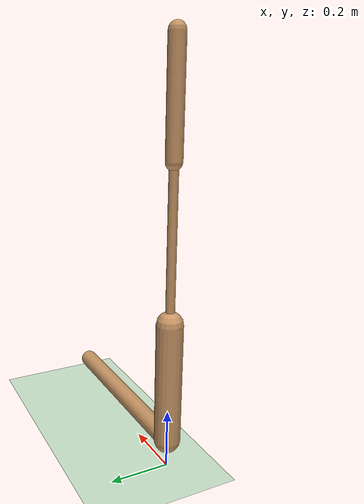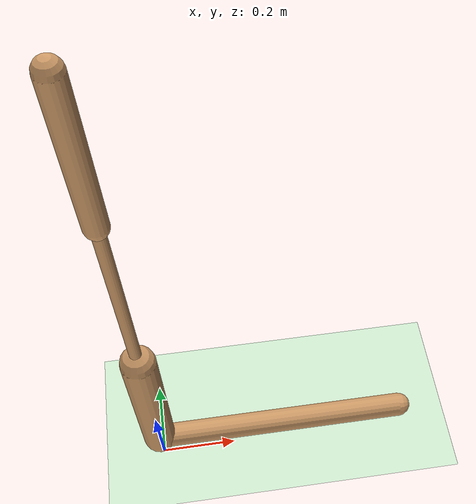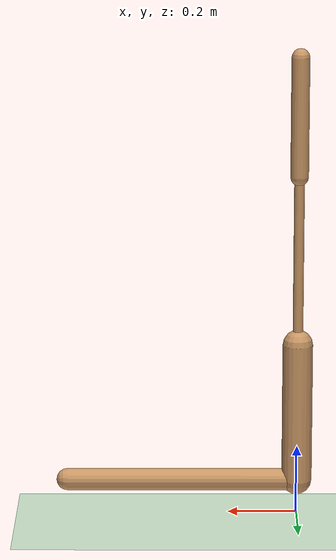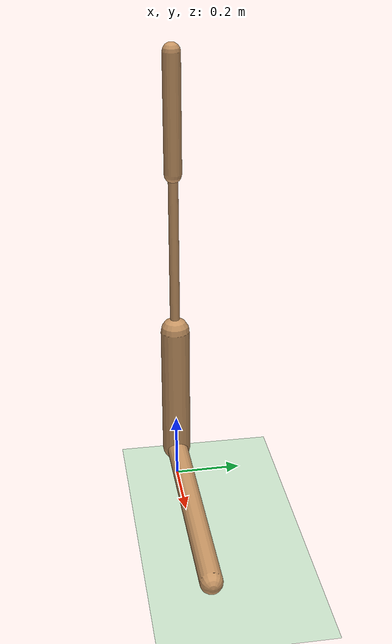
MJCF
<mujoco model="walker2d">
  <compiler angle="degree" inertiafromgeom="true" />
  <default>
    <joint armature="0.01" damping=".1" limited="true" />
    <geom conaffinity="0" condim="3" contype="1" density="1000" friction=".7 .1 .1" rgba="0.8 0.6 .4 1" />
  </default>
  <option integrator="RK4" timestep="0.002" />
  <worldbody>
    <light cutoff="100" diffuse="1 1 1" dir="-0 0 -1.3" directional="true" exponent="1" pos="0 0 1.3" specular=".1 .1 .1" />
    <geom conaffinity="1" condim="3" name="floor" pos="0 0 0" rgba="0.8 0.9 0.8 1" size="40 40 40" type="plane" material="MatPlane" />
    <body name="torso" pos="0 0 1.174143558740616">
      <camera name="track" mode="trackcom" pos="0 -5 -1.25" xyaxes="1 0 0 0 0 1" />
      <joint armature="0" axis="1 0 0" damping="0" limited="false" name="rootx" pos="0 0 -1.25" stiffness="0" type="slide" />
      <joint armature="0" axis="0 0 1" damping="0" limited="false" name="rootz" pos="0 0 -1.25" ref="1.25" stiffness="0" type="slide" />
      <joint armature="0" axis="0 1 0" damping="0" limited="false" name="rooty" pos="0 0 0" stiffness="0" type="hinge" />
      <geom friction="0.9" name="torso_geom" size="0.02589675411581993 0.1719171702861786" type="capsule" />
      <body name="thigh" pos="0 0 -0.1719171702861786">
        <joint axis="0 -1 0" name="thigh_joint" pos="0 0 0" range="-150 0" type="hinge" />
        <site name="torso_thigh_site" pos="0 0 0" size="0.01" type="sphere" rgba="1 0 0 0.5" />
        <geom friction="0.9" pos="0 0 -0.247030109167099" name="thigh_geom" size="0.01468297466635704 0.247030109167099" type="capsule" />
        <body name="leg" pos="0 0 -0.6981433033943176">
          <joint axis="0 -1 0" name="leg_joint" pos="0 0 0.20408308506011963" range="-150 0" type="hinge" />
          <site name="thigh_leg_site" pos="0 0 0.25" size="0.01" type="sphere" rgba="1 0 0 0.5" />
          <geom friction="0.9" name="leg_geom" size="0.04335831105709076 0.20408308506011963" type="capsule" />
          <body name="foot" pos="0.6668641567230225 0 -0.3040830850601196">
            <joint axis="0 -1 0" name="foot_joint" pos="-0.6668641567230225 0 0.1" range="-45 45" type="hinge" />
            <site name="leg_foot_site" pos="-0.2 0 0.1" size="0.01" type="sphere" rgba="1 0 0 0.5" />
            <geom friction="0.9" pos="-0.33343207836151123 0 0.1" quat="0.70710678118654757 0 -0.70710678118654746 0" name="foot_geom" size="0.0319717675447464 0.33343207836151123" type="capsule" />
          </body>
        </body>
      </body>

      <body name="thigh_left" pos="0 0 -0.1719171702861786">
        <joint axis="0 -1 0" name="thigh_left_joint" pos="0 0 0" range="-150 0" type="hinge" />
        <site name="torso_thigh_left_site" pos="0 0 0" size="0.01" type="sphere" rgba="1 0 0 0.5" />
        <geom friction="0.9" name="thigh_left_geom" rgba=".7 .3 .6 1" size="0.01468297466635704 0.247030109167099" pos="0 0 -0.247030109167099" type="capsule" />
        <body name="leg_left" pos="0 0 -0.6981433033943176">
          <joint axis="0 -1 0" name="leg_left_joint" pos="0 0 0.20408308506011963" range="-150 0" type="hinge" />
          <site name="thigh_leg_left_site" pos="0 0 0.25" size="0.01" type="sphere" rgba="1 0 0 0.5" />
          <geom friction="0.9" name="leg_left_geom" rgba=".7 .3 .6 1" size="0.04335831105709076 0.20408308506011963" type="capsule" />
          <body name="foot_left" pos="0.6668641567230225 0 -0.3040830850601196">
            <joint axis="0 -1 0" name="foot_left_joint" pos="-0.6668641567230225 0 0.1" range="-45 45" type="hinge" />
            <site name="leg_foot_left_site" pos="-0.2 0 0.1" size="0.01" type="sphere" rgba="1 0 0 0.5" />
            <geom friction="1.9" name="foot_left_geom" rgba=".7 .3 .6 1" size="0.0319717675447464 0.33343207836151123" pos="-0.33343207836151123 0 0.1" type="capsule" quat="0.70710678118654757 0 -0.70710678118654746 0" />
          </body>
        </body>
      </body>
    </body>
  </worldbody>
  <actuator>

    <motor ctrllimited="true" ctrlrange="-1.0 1.0" gear="9.467939245461444" joint="thigh_joint" />
    <motor ctrllimited="true" ctrlrange="-1.0 1.0" gear="95.91614882105019" joint="leg_joint" />
    <motor ctrllimited="true" ctrlrange="-1.0 1.0" gear="94.67562311459082" joint="foot_joint" />
    <motor ctrllimited="true" ctrlrange="-1.0 1.0" gear="9.467939245461444" joint="thigh_left_joint" />
    <motor ctrllimited="true" ctrlrange="-1.0 1.0" gear="95.91614882105019" joint="leg_left_joint" />
    <motor ctrllimited="true" ctrlrange="-1.0 1.0" gear="94.67562311459082" joint="foot_left_joint" />

  </actuator>
    <asset>
        <texture type="skybox" builtin="gradient" rgb1=".4 .5 .6" rgb2="0 0 0" width="100" height="100" />
        <texture builtin="flat" height="1278" mark="cross" markrgb="1 1 1" name="texgeom" random="0.01" rgb1="0.8 0.6 0.4" rgb2="0.8 0.6 0.4" type="cube" width="127" />
        <texture builtin="checker" height="100" name="texplane" rgb1="0 0 0" rgb2="0.8 0.8 0.8" type="2d" width="100" />
        <material name="MatPlane" reflectance="0.5" shininess="1" specular="1" texrepeat="60 60" texture="texplane" />
        <material name="geom" texture="texgeom" texuniform="true" />
    </asset>

  <sensor>
    <force site="torso_thigh_site" name="torso_thigh_sensor" />
    <force site="thigh_leg_site" name="thigh_leg_sensor" />
    <force site="leg_foot_site" name="leg_foot_sensor" />
    <force site="torso_thigh_left_site" name="torso_thigh_left_sensor" />
    <force site="thigh_leg_left_site" name="thigh_leg_left_sensor" />
    <force site="leg_foot_left_site" name="leg_foot_left_sensor" />
  </sensor>
</mujoco>
